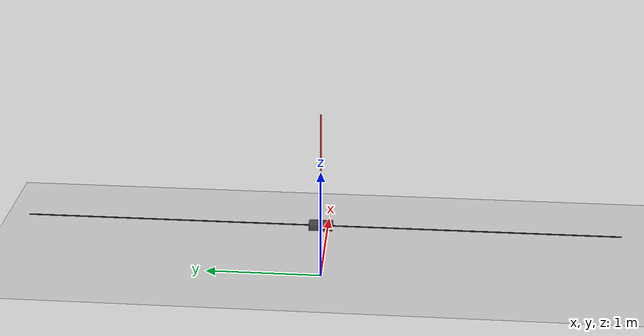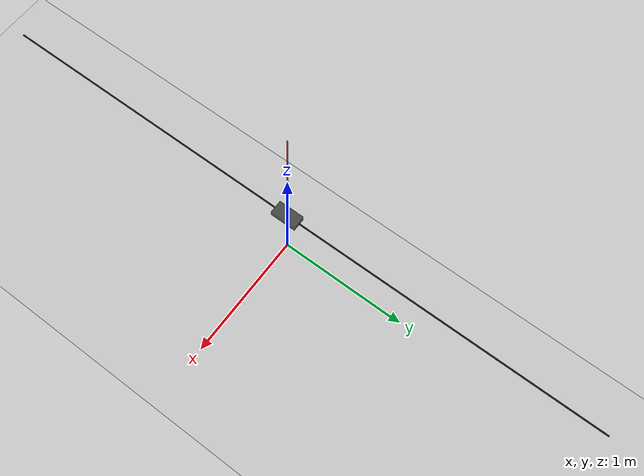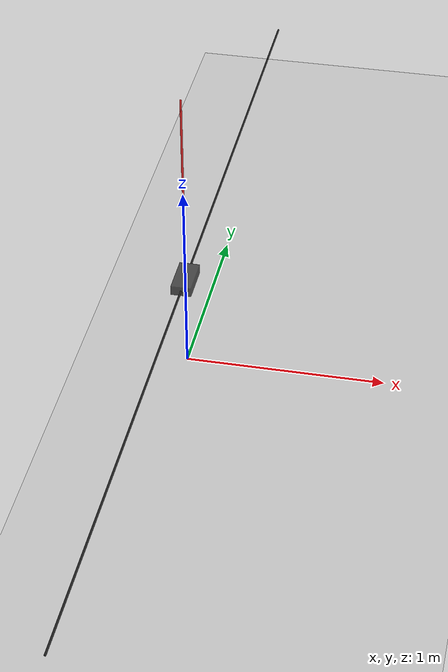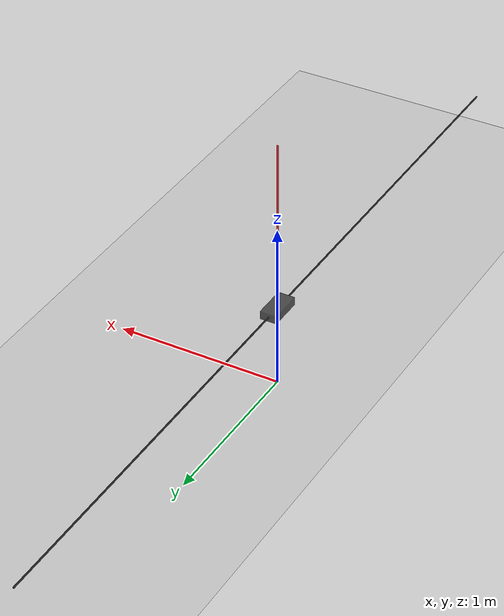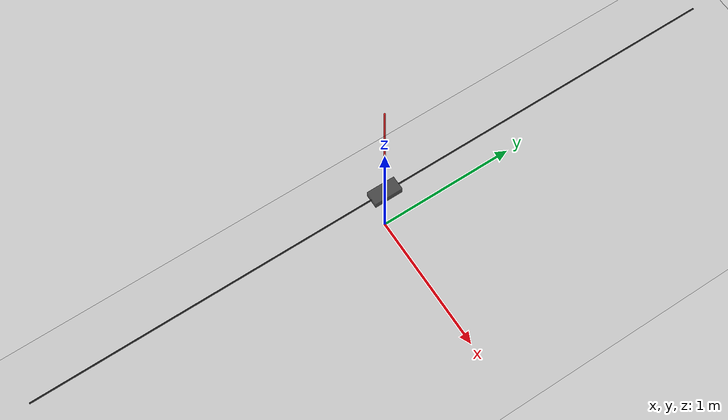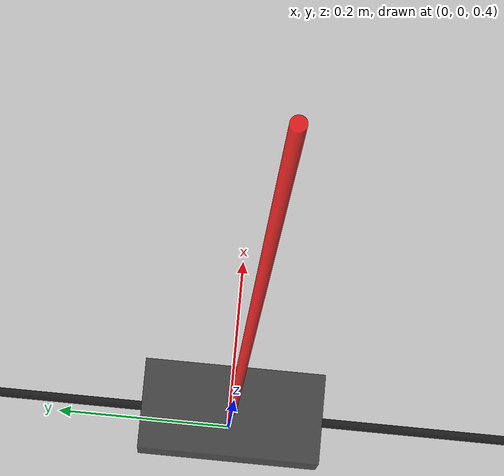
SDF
<?xml version='1.0' encoding='UTF-8'?>
<sdf version='1.6'>
  <world name='default'>

    <plugin filename='libignition-gazebo-physics-system.so' name='ignition::gazebo::systems::Physics'>
    </plugin>
    <plugin filename='libignition-gazebo-scene-broadcaster-system.so' name='ignition::gazebo::systems::SceneBroadcaster'>
    </plugin>
    <plugin filename='libignition-gazebo-user-commands-system.so' name='ignition::gazebo::systems::UserCommands'>
    </plugin>

    <physics default="true" type="dart">
      <real_time_factor>100</real_time_factor>
    </physics>

    <scene>
      <ambient>0.8 0.8 0.8 1.0</ambient>
      <background>0.34 0.39 0.43 1.0</background>
      <grid>true</grid>
      <origin_visual>false</origin_visual>
    </scene>

    <light type="directional" name="sun">
      <cast_shadows>true</cast_shadows>
      <pose>0 0 10 0 0 0</pose>
      <diffuse>0.8 0.8 0.8 1</diffuse>
      <specular>0.2 0.2 0.2 1</specular>
      <attenuation>
        <range>1000</range>
        <constant>0.9</constant>
        <linear>0.01</linear>
        <quadratic>0.001</quadratic>
      </attenuation>
      <direction>-0.5 0.1 -0.9</direction>
    </light>

    <gui fullscreen='0'>
      <!-- 3D scene -->
      <plugin filename="GzScene3D" name="3D View">
        <ignition-gui>
          <title>3D View</title>
          <property type="bool" key="showTitleBar">false</property>
          <property type="string" key="state">docked</property>
        </ignition-gui>
        <engine>ogre</engine>
        <scene>scene</scene>
        <ambient_light>1.0 1.0 1.0</ambient_light>
        <background_color>0.8 0.8 0.8</background_color>
        <camera_pose>-6 0 6 0 0.5 0</camera_pose>
      </plugin>
      <!-- World control -->
      <plugin filename='WorldControl' name='World control'>
        <ignition-gui>
          <title>World control</title>
          <property type='bool' key='showTitleBar'>false</property>
          <property type='bool' key='resizable'>false</property>
          <property type='double' key='height'>72</property>
          <property type='double' key='width'>121</property>
          <property type='double' key='z'>1</property>
          <property type='string' key='state'>floating</property>
          <anchors target='3D View'>
            <line own='left' target='left'/>
            <line own='bottom' target='bottom'/>
          </anchors>
        </ignition-gui>
        <play_pause>true</play_pause>
        <step>true</step>
        <start_paused>true</start_paused>
        <service>/world/default/control</service>
        <stats_topic>/world/default/stats</stats_topic>
      </plugin>
      <!-- World statistics -->
      <plugin filename="WorldStats" name="World stats">
        <ignition-gui>
          <title>World stats</title>
          <property type="bool" key="showTitleBar">false</property>
          <property type="bool" key="resizable">false</property>
          <property type="double" key="height">110</property>
          <property type="double" key="width">290</property>
          <property type="double" key="z">1</property>

          <property type="string" key="state">floating</property>
          <anchors target="3D View">
            <line own="right" target="right"/>
            <line own="bottom" target="bottom"/>
          </anchors>
        </ignition-gui>
        <sim_time>true</sim_time>
        <real_time>true</real_time>
        <real_time_factor>true</real_time_factor>
        <iterations>true</iterations>
        <topic>/world/default/stats</topic>
      </plugin>
    </gui>

    <model name="ground_plane">
      <static>true</static>
      <link name="link">
        <collision name="collision">
          <geometry>
            <plane>
              <normal>0 0 1</normal>
            </plane>
          </geometry>
        </collision>
        <visual name="visual">
          <geometry>
            <plane>
              <normal>0 0 1</normal>
              <size>100 100</size>
            </plane>
          </geometry>
          <material>
            <ambient>0.8 0.8 0.8 1</ambient>
            <diffuse>0.8 0.8 0.8 1</diffuse>
            <specular>0.8 0.8 0.8 1</specular>
          </material>
        </visual>
      </link>
    </model>

    <include>
      <pose>0 0 0 0 0 0</pose>
      <uri>CartPole</uri>
    </include>

  </world>
</sdf>

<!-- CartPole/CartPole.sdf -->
<sdf version='1.6'>
  <model name='cartpole_xacro'>
    <link name='rail'>
      <pose>0 0 0.5 0 -0 0</pose>
      <inertial>
        <pose>0 0 0 0 -0 0</pose>
        <mass>5</mass>
        <inertia>
          <ixx>100</ixx>
          <ixy>0</ixy>
          <ixz>0</ixz>
          <iyy>100</iyy>
          <iyz>0</iyz>
          <izz>100</izz>
        </inertia>
      </inertial>
      <visual name='rail_visual'>
        <pose>0 0 0 1.5708 -0 0</pose>
        <geometry>
          <cylinder>
            <length>5</length>
            <radius>0.005</radius>
          </cylinder>
        </geometry>
        <material>
          <ambient>0 0 0 0.8</ambient>
          <diffuse>0 0 0 0.8</diffuse>
          <specular>0 0 0 0.8</specular>
          <emissive>0 0 0 0.8</emissive>
        </material>
      </visual>
      <gravity>1</gravity>
      <velocity_decay/>
    </link>
    <joint name='world_to_rail' type='fixed'>
      <child>rail</child>
      <parent>world</parent>
    </joint>
    <link name='cart'>
      <pose>0 0 0.5 0 -0 0</pose>
      <inertial>
        <pose>0 0 0 0 -0 0</pose>
        <mass>1</mass>
        <inertia>
          <ixx>0.00354167</ixx>
          <ixy>0</ixy>
          <ixz>0</ixz>
          <iyy>0.00416667</iyy>
          <iyz>0</iyz>
          <izz>0.00104167</izz>
        </inertia>
      </inertial>
      <visual name='cart_visual'>
        <pose>0 0 0 0 -0 0</pose>
        <geometry>
          <box>
            <size>0.1 0.2 0.05</size>
          </box>
        </geometry>
        <material>
          <ambient>0.2 0.2 0.2 0.8</ambient>
          <diffuse>0.2 0.2 0.2 0.8</diffuse>
          <specular>0.2 0.2 0.2 0.8</specular>
          <emissive>0.2 0.2 0.2 0.8</emissive>
        </material>
      </visual>
      <gravity>1</gravity>
      <velocity_decay/>
    </link>
    <joint name='linear' type='prismatic'>
      <child>cart</child>
      <parent>rail</parent>
      <axis>
        <xyz>0 1 0</xyz>
        <limit>
          <lower>-2.4</lower>
          <upper>2.4</upper>
          <effort>500</effort>
          <velocity>10</velocity>
        </limit>
        <dynamics>
          <spring_reference>0</spring_reference>
          <spring_stiffness>0</spring_stiffness>
        </dynamics>
        <use_parent_model_frame>1</use_parent_model_frame>
      </axis>
    </joint>
    <link name='pole'>
      <pose>0 0 0.525 0 -0 0</pose>
      <inertial>
        <pose>0 0 0.5 0 -0 0</pose>
        <mass>0.1</mass>
        <inertia>
          <ixx>0.00833396</ixx>
          <ixy>0</ixy>
          <ixz>0</ixz>
          <iyy>0.00833396</iyy>
          <iyz>0</iyz>
          <izz>1.25e-06</izz>
        </inertia>
      </inertial>
      <visual name='pole_visual'>
        <pose>0 0 0.5 0 -0 0</pose>
        <geometry>
          <cylinder>
            <length>1</length>
            <radius>0.005</radius>
          </cylinder>
        </geometry>
        <material>
          <ambient>1 0 0 0.8</ambient>
          <diffuse>1 0 0 0.8</diffuse>
          <specular>1 0 0 0.8</specular>
          <emissive>1 0 0 0.8</emissive>
        </material>
      </visual>
      <gravity>1</gravity>
      <velocity_decay/>
    </link>
    <joint name='pivot' type='revolute'>
      <child>pole</child>
      <parent>cart</parent>
      <axis>
        <xyz>1 0 0</xyz>
        <limit>
          <lower>-1e+16</lower>
          <upper>1e+16</upper>
        </limit>
        <dynamics>
          <spring_reference>0</spring_reference>
          <spring_stiffness>0</spring_stiffness>
        </dynamics>
        <use_parent_model_frame>1</use_parent_model_frame>
      </axis>
    </joint>
  </model>
</sdf>
